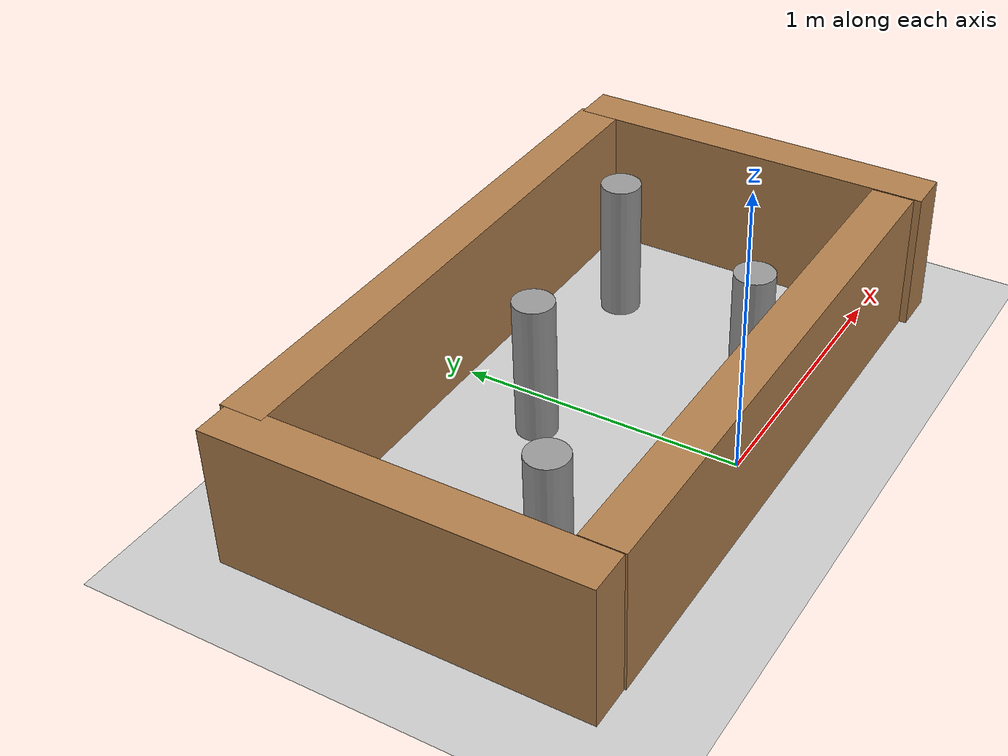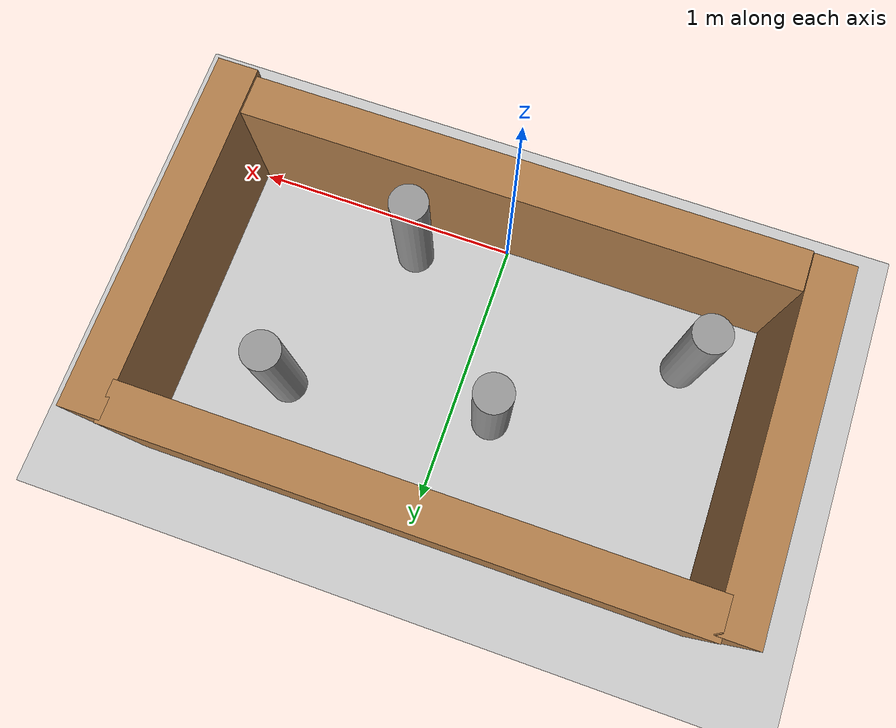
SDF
<sdf version="1.6">
 <world name="default">
  <light name="sun" type="directional">
   <pose>0 0 10 0 -0 0</pose>
   <diffuse>0.8 0.8 0.8 1</diffuse>
   <specular>0.1 0.1 0.1 1</specular>
   <attenuation>
    <range>1000</range>
    <constant>0.9</constant>
    <linear>0.01</linear>
    <quadratic>0.001</quadratic>
   </attenuation>
   <direction>-0.5 0.5 -1</direction>
  </light>
  <model name="ground_plane">
   <static>1</static>
   <link name="link">
    <collision name="collision">
     <geometry><plane><normal>0 0 1</normal><size>100 100</size></plane></geometry>
     <surface><friction><ode><mu>100</mu><mu2>50</mu2></ode></friction></surface>
    </collision>
    <visual name="visual">
     <cast_shadows>0</cast_shadows>
     <geometry><plane><normal>0 0 1</normal><size>100 100</size></plane></geometry>
     <material>
      <script><uri>file://media/materials/scripts/gazebo.material</uri><name>Gazebo/Grey</name></script>
     </material>
    </visual>
   </link>
  </model>
  <physics name="default_physics" default="0" type="ode">
   <real_time_update_rate>1000</real_time_update_rate>
   <max_step_size>0.001</max_step_size>
   <real_time_factor>1</real_time_factor>
   <ode>
    <solver>
     <type>quick</type>
     <iters>150</iters>
     <precon_iters>0</precon_iters>
     <sor>1.4</sor>
     <use_dynamic_moi_rescaling>1</use_dynamic_moi_rescaling>
    </solver>
    <constraints>
     <cfm>1e-05</cfm>
     <erp>0.2</erp>
     <contact_max_correcting_vel>2000</contact_max_correcting_vel>
     <contact_surface_layer>0.01</contact_surface_layer>
    </constraints>
   </ode>
  </physics>
  <scene><ambient>0.4 0.4 0.4 1</ambient><background>0.7 0.7 0.7 1</background><shadows>1</shadows></scene>
  <gravity>0 0 -9.8</gravity>
  <magnetic_field>6e-06 2.3e-05 -4.2e-05</magnetic_field>
  <atmosphere type="adiabatic"/>
  <spherical_coordinates>
   <surface_model>EARTH_WGS84</surface_model>
   <latitude_deg>0</latitude_deg>
   <longitude_deg>0</longitude_deg>
   <elevation>0</elevation>
   <heading_deg>0</heading_deg>
  </spherical_coordinates>
  <model name="turtlebot3_square_0">
   <link name="Wall_0">
    <pose>-0.004631 1.07942 0 0 -0 0</pose>
    <inertial>
     <mass>1.02462</mass>
     <inertia><ixx>1.02462</ixx><ixy>0</ixy><ixz>0</ixz><iyy>1.05015</iyy><iyz>0</iyz><izz>1.05015</izz></inertia>
    </inertial>
    <visual name="Wall_0_Visual">
     <pose>0 0 0.25 0 -0 0</pose>
     <geometry><box><size>2.04923 0.15 0.5</size></box></geometry>
     <material>
      <script><uri>file://media/materials/scripts/gazebo.material</uri><name>Gazebo/Wood</name></script>
      <ambient>1 1 1 1</ambient>
      <diffuse>1 1 1 1</diffuse>
      <specular>0.2 0.2 0.2 1</specular>
      <emissive>0 0 0 1</emissive>
      <shader type="vertex"><normal_map>__default__</normal_map></shader>
     </material>
    </visual>
    <collision name="Wall_0_Collision">
     <pose>0 0 0.25 0 -0 0</pose>
     <geometry><box><size>2.04923 0.15 0.5</size></box></geometry>
     <surface>
      <friction>
       <ode><mu>1</mu><mu2>1</mu2><fdir1>0 0 0</fdir1><slip1>0</slip1><slip2>0</slip2></ode>
       <torsional>
        <coefficient>1</coefficient>
        <patch_radius>0</patch_radius>
        <surface_radius>0</surface_radius>
        <use_patch_radius>1</use_patch_radius>
        <ode><slip>0</slip></ode>
       </torsional>
      </friction>
      <bounce><restitution_coefficient>0</restitution_coefficient><threshold>1e+06</threshold></bounce>
      <contact>
       <collide_without_contact>0</collide_without_contact>
       <collide_without_contact_bitmask>1</collide_without_contact_bitmask>
       <collide_bitmask>1</collide_bitmask>
       <ode>
        <soft_cfm>0</soft_cfm>
        <soft_erp>0.2</soft_erp>
        <kp>1e+13</kp>
        <kd>1</kd>
        <max_vel>0.01</max_vel>
        <min_depth>0</min_depth>
       </ode>
       <bullet>
        <split_impulse>1</split_impulse>
        <split_impulse_penetration_threshold>-0.01</split_impulse_penetration_threshold>
        <soft_cfm>0</soft_cfm>
        <soft_erp>0.2</soft_erp>
        <kp>1e+13</kp>
        <kd>1</kd>
       </bullet>
      </contact>
     </surface>
    </collision>
   </link>
   <link name="Wall_2">
    <pose>-1.07765 0.494257 0 0 0 -1.5708</pose>
    <inertial>
     <mass>0.641664</mass>
     <inertia>
      <ixx>0.641664</ixx>
      <ixy>0</ixy>
      <ixz>0</ixz>
      <iyy>0.452928</iyy>
      <iyz>0</iyz>
      <izz>0.452928</izz>
     </inertia>
    </inertial>
    <visual name="Wall_2_Visual">
     <pose>0 0 0.25 0 -0 0</pose>
     <geometry><box><size>1.28332 0.15 0.5</size></box></geometry>
     <material>
      <script><uri>file://media/materials/scripts/gazebo.material</uri><name>Gazebo/Wood</name></script>
      <ambient>1 1 1 1</ambient>
      <diffuse>1 1 1 1</diffuse>
      <specular>0.2 0.2 0.2 1</specular>
      <emissive>0 0 0 1</emissive>
      <shader type="vertex"><normal_map>__default__</normal_map></shader>
     </material>
    </visual>
    <collision name="Wall_2_Collision">
     <pose>0 0 0.25 0 -0 0</pose>
     <geometry><box><size>1.28332 0.15 0.5</size></box></geometry>
     <surface>
      <friction>
       <ode><mu>1</mu><mu2>1</mu2><fdir1>0 0 0</fdir1><slip1>0</slip1><slip2>0</slip2></ode>
       <torsional>
        <coefficient>1</coefficient>
        <patch_radius>0</patch_radius>
        <surface_radius>0</surface_radius>
        <use_patch_radius>1</use_patch_radius>
        <ode><slip>0</slip></ode>
       </torsional>
      </friction>
      <bounce><restitution_coefficient>0</restitution_coefficient><threshold>1e+06</threshold></bounce>
      <contact>
       <collide_without_contact>0</collide_without_contact>
       <collide_without_contact_bitmask>1</collide_without_contact_bitmask>
       <collide_bitmask>1</collide_bitmask>
       <ode>
        <soft_cfm>0</soft_cfm>
        <soft_erp>0.2</soft_erp>
        <kp>1e+13</kp>
        <kd>1</kd>
        <max_vel>0.01</max_vel>
        <min_depth>0</min_depth>
       </ode>
       <bullet>
        <split_impulse>1</split_impulse>
        <split_impulse_penetration_threshold>-0.01</split_impulse_penetration_threshold>
        <soft_cfm>0</soft_cfm>
        <soft_erp>0.2</soft_erp>
        <kp>1e+13</kp>
        <kd>1</kd>
       </bullet>
      </contact>
     </surface>
    </collision>
   </link>
   <link name="Wall_3">
    <pose>0 -0.077952 0 0 -0 0</pose>
    <inertial>
     <mass>1</mass>
     <inertia><ixx>1</ixx><ixy>0</ixy><ixz>0</ixz><iyy>1</iyy><iyz>0</iyz><izz>1</izz></inertia>
    </inertial>
    <visual name="Wall_3_Visual">
     <pose>0 0 0.25 0 -0 0</pose>
     <geometry><box><size>2 0.15 0.5</size></box></geometry>
     <material>
      <script><uri>file://media/materials/scripts/gazebo.material</uri><name>Gazebo/Wood</name></script>
      <ambient>1 1 1 1</ambient>
      <diffuse>1 1 1 1</diffuse>
      <specular>0.2 0.2 0.2 1</specular>
      <emissive>0 0 0 1</emissive>
      <shader type="vertex"><normal_map>__default__</normal_map></shader>
     </material>
    </visual>
    <collision name="Wall_3_Collision">
     <pose>0 0 0.25 0 -0 0</pose>
     <geometry><box><size>2 0.15 0.5</size></box></geometry>
     <surface>
      <friction>
       <ode><mu>1</mu><mu2>1</mu2><fdir1>0 0 0</fdir1><slip1>0</slip1><slip2>0</slip2></ode>
       <torsional>
        <coefficient>1</coefficient>
        <patch_radius>0</patch_radius>
        <surface_radius>0</surface_radius>
        <use_patch_radius>1</use_patch_radius>
        <ode><slip>0</slip></ode>
       </torsional>
      </friction>
      <bounce><restitution_coefficient>0</restitution_coefficient><threshold>1e+06</threshold></bounce>
      <contact>
       <collide_without_contact>0</collide_without_contact>
       <collide_without_contact_bitmask>1</collide_without_contact_bitmask>
       <collide_bitmask>1</collide_bitmask>
       <ode>
        <soft_cfm>0</soft_cfm>
        <soft_erp>0.2</soft_erp>
        <kp>1e+13</kp>
        <kd>1</kd>
        <max_vel>0.01</max_vel>
        <min_depth>0</min_depth>
       </ode>
       <bullet>
        <split_impulse>1</split_impulse>
        <split_impulse_penetration_threshold>-0.01</split_impulse_penetration_threshold>
        <soft_cfm>0</soft_cfm>
        <soft_erp>0.2</soft_erp>
        <kp>1e+13</kp>
        <kd>1</kd>
       </bullet>
      </contact>
     </surface>
    </collision>
   </link>
   <link name="Wall_4">
    <pose>1.0804 0.482892 0 0 -0 1.5708</pose>
    <inertial>
     <mass>0.660053</mass>
     <inertia><ixx>0.660053</ixx><ixy>0</ixy><ixz>0</ixz><iyy>0.47381</iyy><iyz>0</iyz><izz>0.47381</izz></inertia>
    </inertial>
    <visual name="Wall_4_Visual">
     <pose>0 0 0.25 0 -0 0</pose>
     <geometry><box><size>1.32011 0.15 0.5</size></box></geometry>
     <material>
      <script><uri>file://media/materials/scripts/gazebo.material</uri><name>Gazebo/Wood</name></script>
      <ambient>1 1 1 1</ambient>
      <diffuse>1 1 1 1</diffuse>
      <specular>0.2 0.2 0.2 1</specular>
      <emissive>0 0 0 1</emissive>
      <shader type="vertex"><normal_map>__default__</normal_map></shader>
     </material>
    </visual>
    <collision name="Wall_4_Collision">
     <pose>0 0 0.25 0 -0 0</pose>
     <geometry><box><size>1.32011 0.15 0.5</size></box></geometry>
     <surface>
      <friction>
       <ode><mu>1</mu><mu2>1</mu2><fdir1>0 0 0</fdir1><slip1>0</slip1><slip2>0</slip2></ode>
       <torsional>
        <coefficient>1</coefficient>
        <patch_radius>0</patch_radius>
        <surface_radius>0</surface_radius>
        <use_patch_radius>1</use_patch_radius>
        <ode><slip>0</slip></ode>
       </torsional>
      </friction>
      <bounce><restitution_coefficient>0</restitution_coefficient><threshold>1e+06</threshold></bounce>
      <contact>
       <collide_without_contact>0</collide_without_contact>
       <collide_without_contact_bitmask>1</collide_without_contact_bitmask>
       <collide_bitmask>1</collide_bitmask>
       <ode>
        <soft_cfm>0</soft_cfm>
        <soft_erp>0.2</soft_erp>
        <kp>1e+13</kp>
        <kd>1</kd>
        <max_vel>0.01</max_vel>
        <min_depth>0</min_depth>
       </ode>
       <bullet>
        <split_impulse>1</split_impulse>
        <split_impulse_penetration_threshold>-0.01</split_impulse_penetration_threshold>
        <soft_cfm>0</soft_cfm>
        <soft_erp>0.2</soft_erp>
        <kp>1e+13</kp>
        <kd>1</kd>
       </bullet>
      </contact>
     </surface>
    </collision>
   </link>
   <link name="link_0_clone_clone">
    <pose>0.611301 0.763305 0.249724 0 -0 0</pose>
    <inertial>
     <mass>1</mass>
     <inertia><ixx>0.145833</ixx><ixy>0</ixy><ixz>0</ixz><iyy>0.145833</iyy><iyz>0</iyz><izz>0.125</izz></inertia>
    </inertial>
    <visual name="visual">
     <geometry><cylinder><radius>0.07</radius><length>0.5</length></cylinder></geometry>
     <material>
      <lighting>1</lighting>
      <script><uri>file://media/materials/scripts/gazebo.material</uri><name>Gazebo/Grey</name></script>
      <ambient>0.3 0.3 0.3 1</ambient>
      <diffuse>0.7 0.7 0.7 1</diffuse>
      <specular>0.01 0.01 0.01 1</specular>
      <emissive>0 0 0 1</emissive>
      <shader type="vertex"><normal_map>__default__</normal_map></shader>
     </material>
    </visual>
    <collision name="collision">
     <geometry><cylinder><radius>0.07</radius><length>0.5</length></cylinder></geometry>
     <surface>
      <friction>
       <ode><mu>1</mu><mu2>1</mu2><fdir1>0 0 0</fdir1><slip1>0</slip1><slip2>0</slip2></ode>
       <torsional>
        <coefficient>1</coefficient>
        <patch_radius>0</patch_radius>
        <surface_radius>0</surface_radius>
        <use_patch_radius>1</use_patch_radius>
        <ode><slip>0</slip></ode>
       </torsional>
      </friction>
      <bounce><restitution_coefficient>0</restitution_coefficient><threshold>1e+06</threshold></bounce>
      <contact>
       <collide_without_contact>0</collide_without_contact>
       <collide_without_contact_bitmask>1</collide_without_contact_bitmask>
       <collide_bitmask>1</collide_bitmask>
       <ode>
        <soft_cfm>0</soft_cfm>
        <soft_erp>0.2</soft_erp>
        <kp>1e+13</kp>
        <kd>1</kd>
        <max_vel>0.01</max_vel>
        <min_depth>0</min_depth>
       </ode>
       <bullet>
        <split_impulse>1</split_impulse>
        <split_impulse_penetration_threshold>-0.01</split_impulse_penetration_threshold>
        <soft_cfm>0</soft_cfm>
        <soft_erp>0.2</soft_erp>
        <kp>1e+13</kp>
        <kd>1</kd>
       </bullet>
      </contact>
     </surface>
    </collision>
   </link>
   <link name="link_0_clone_clone_0">
    <pose>0.334234 0.123992 0.249724 0 -0 0</pose>
    <inertial>
     <mass>1</mass>
     <inertia><ixx>0.145833</ixx><ixy>0</ixy><ixz>0</ixz><iyy>0.145833</iyy><iyz>0</iyz><izz>0.125</izz></inertia>
    </inertial>
    <visual name="visual">
     <geometry><cylinder><radius>0.07</radius><length>0.5</length></cylinder></geometry>
     <material>
      <lighting>1</lighting>
      <script><uri>file://media/materials/scripts/gazebo.material</uri><name>Gazebo/Grey</name></script>
      <ambient>0.3 0.3 0.3 1</ambient>
      <diffuse>0.7 0.7 0.7 1</diffuse>
      <specular>0.01 0.01 0.01 1</specular>
      <emissive>0 0 0 1</emissive>
      <shader type="vertex"><normal_map>__default__</normal_map></shader>
     </material>
    </visual>
    <collision name="collision">
     <geometry><cylinder><radius>0.07</radius><length>0.5</length></cylinder></geometry>
     <surface>
      <friction>
       <ode><mu>1</mu><mu2>1</mu2><fdir1>0 0 0</fdir1><slip1>0</slip1><slip2>0</slip2></ode>
       <torsional>
        <coefficient>1</coefficient>
        <patch_radius>0</patch_radius>
        <surface_radius>0</surface_radius>
        <use_patch_radius>1</use_patch_radius>
        <ode><slip>0</slip></ode>
       </torsional>
      </friction>
      <bounce><restitution_coefficient>0</restitution_coefficient><threshold>1e+06</threshold></bounce>
      <contact>
       <collide_without_contact>0</collide_without_contact>
       <collide_without_contact_bitmask>1</collide_without_contact_bitmask>
       <collide_bitmask>1</collide_bitmask>
       <ode>
        <soft_cfm>0</soft_cfm>
        <soft_erp>0.2</soft_erp>
        <kp>1e+13</kp>
        <kd>1</kd>
        <max_vel>0.01</max_vel>
        <min_depth>0</min_depth>
       </ode>
       <bullet>
        <split_impulse>1</split_impulse>
        <split_impulse_penetration_threshold>-0.01</split_impulse_penetration_threshold>
        <soft_cfm>0</soft_cfm>
        <soft_erp>0.2</soft_erp>
        <kp>1e+13</kp>
        <kd>1</kd>
       </bullet>
      </contact>
     </surface>
    </collision>
   </link>
   <link name="link_0_clone_clone_1">
    <pose>-0.147725 0.651665 0.249724 0 -0 0</pose>
    <inertial>
     <mass>1</mass>
     <inertia><ixx>0.145833</ixx><ixy>0</ixy><ixz>0</ixz><iyy>0.145833</iyy><iyz>0</iyz><izz>0.125</izz></inertia>
    </inertial>
    <visual name="visual">
     <geometry><cylinder><radius>0.07</radius><length>0.5</length></cylinder></geometry>
     <material>
      <lighting>1</lighting>
      <script><uri>file://media/materials/scripts/gazebo.material</uri><name>Gazebo/Grey</name></script>
      <ambient>0.3 0.3 0.3 1</ambient>
      <diffuse>0.7 0.7 0.7 1</diffuse>
      <specular>0.01 0.01 0.01 1</specular>
      <emissive>0 0 0 1</emissive>
      <shader type="vertex"><normal_map>__default__</normal_map></shader>
     </material>
    </visual>
    <collision name="collision">
     <geometry><cylinder><radius>0.07</radius><length>0.5</length></cylinder></geometry>
     <surface>
      <friction>
       <ode><mu>1</mu><mu2>1</mu2><fdir1>0 0 0</fdir1><slip1>0</slip1><slip2>0</slip2></ode>
       <torsional>
        <coefficient>1</coefficient>
        <patch_radius>0</patch_radius>
        <surface_radius>0</surface_radius>
        <use_patch_radius>1</use_patch_radius>
        <ode><slip>0</slip></ode>
       </torsional>
      </friction>
      <bounce><restitution_coefficient>0</restitution_coefficient><threshold>1e+06</threshold></bounce>
      <contact>
       <collide_without_contact>0</collide_without_contact>
       <collide_without_contact_bitmask>1</collide_without_contact_bitmask>
       <collide_bitmask>1</collide_bitmask>
       <ode>
        <soft_cfm>0</soft_cfm>
        <soft_erp>0.2</soft_erp>
        <kp>1e+13</kp>
        <kd>1</kd>
        <max_vel>0.01</max_vel>
        <min_depth>0</min_depth>
       </ode>
       <bullet>
        <split_impulse>1</split_impulse>
        <split_impulse_penetration_threshold>-0.01</split_impulse_penetration_threshold>
        <soft_cfm>0</soft_cfm>
        <soft_erp>0.2</soft_erp>
        <kp>1e+13</kp>
        <kd>1</kd>
       </bullet>
      </contact>
     </surface>
    </collision>
   </link>
   <link name="link_0_clone_clone_2">
    <pose>-0.757677 0.232853 0.249724 0 -0 0</pose>
    <inertial>
     <mass>1</mass>
     <inertia><ixx>0.145833</ixx><ixy>0</ixy><ixz>0</ixz><iyy>0.145833</iyy><iyz>0</iyz><izz>0.125</izz></inertia>
    </inertial>
    <visual name="visual">
     <geometry><cylinder><radius>0.07</radius><length>0.5</length></cylinder></geometry>
     <material>
      <lighting>1</lighting>
      <script><uri>file://media/materials/scripts/gazebo.material</uri><name>Gazebo/Grey</name></script>
      <ambient>0.3 0.3 0.3 1</ambient>
      <diffuse>0.7 0.7 0.7 1</diffuse>
      <specular>0.01 0.01 0.01 1</specular>
      <emissive>0 0 0 1</emissive>
      <shader type="vertex"><normal_map>__default__</normal_map></shader>
     </material>
    </visual>
    <collision name="collision">
     <geometry><cylinder><radius>0.07</radius><length>0.5</length></cylinder></geometry>
     <surface>
      <friction>
       <ode><mu>1</mu><mu2>1</mu2><fdir1>0 0 0</fdir1><slip1>0</slip1><slip2>0</slip2></ode>
       <torsional>
        <coefficient>1</coefficient>
        <patch_radius>0</patch_radius>
        <surface_radius>0</surface_radius>
        <use_patch_radius>1</use_patch_radius>
        <ode><slip>0</slip></ode>
       </torsional>
      </friction>
      <bounce><restitution_coefficient>0</restitution_coefficient><threshold>1e+06</threshold></bounce>
      <contact>
       <collide_without_contact>0</collide_without_contact>
       <collide_without_contact_bitmask>1</collide_without_contact_bitmask>
       <collide_bitmask>1</collide_bitmask>
       <ode>
        <soft_cfm>0</soft_cfm>
        <soft_erp>0.2</soft_erp>
        <kp>1e+13</kp>
        <kd>1</kd>
        <max_vel>0.01</max_vel>
        <min_depth>0</min_depth>
       </ode>
       <bullet>
        <split_impulse>1</split_impulse>
        <split_impulse_penetration_threshold>-0.01</split_impulse_penetration_threshold>
        <soft_cfm>0</soft_cfm>
        <soft_erp>0.2</soft_erp>
        <kp>1e+13</kp>
        <kd>1</kd>
       </bullet>
      </contact>
     </surface>
    </collision>
   </link>
   <static>1</static>
  </model>
 </world>
</sdf>
